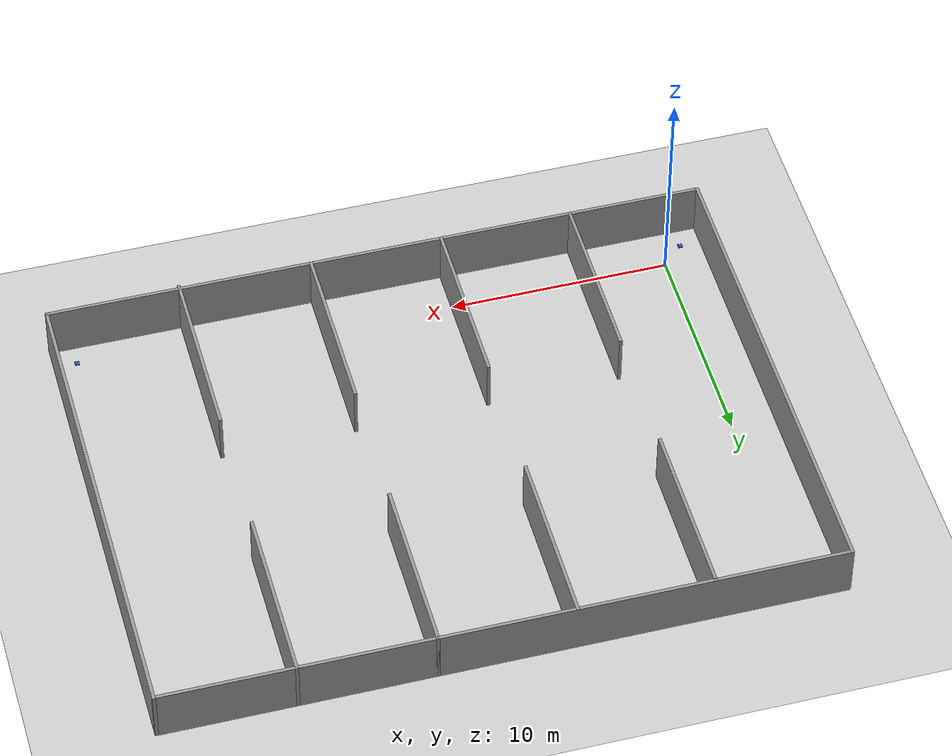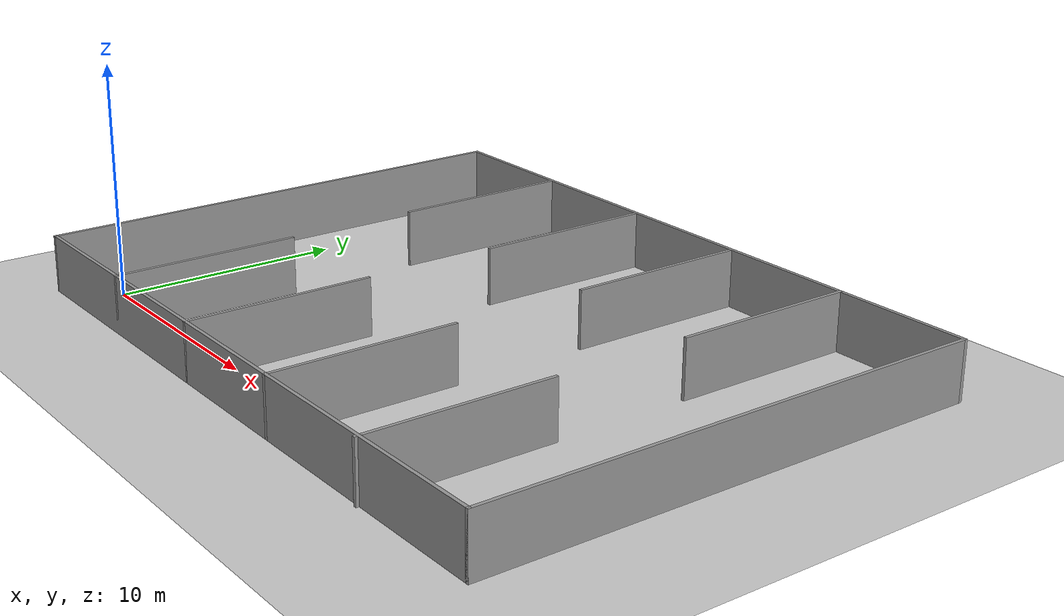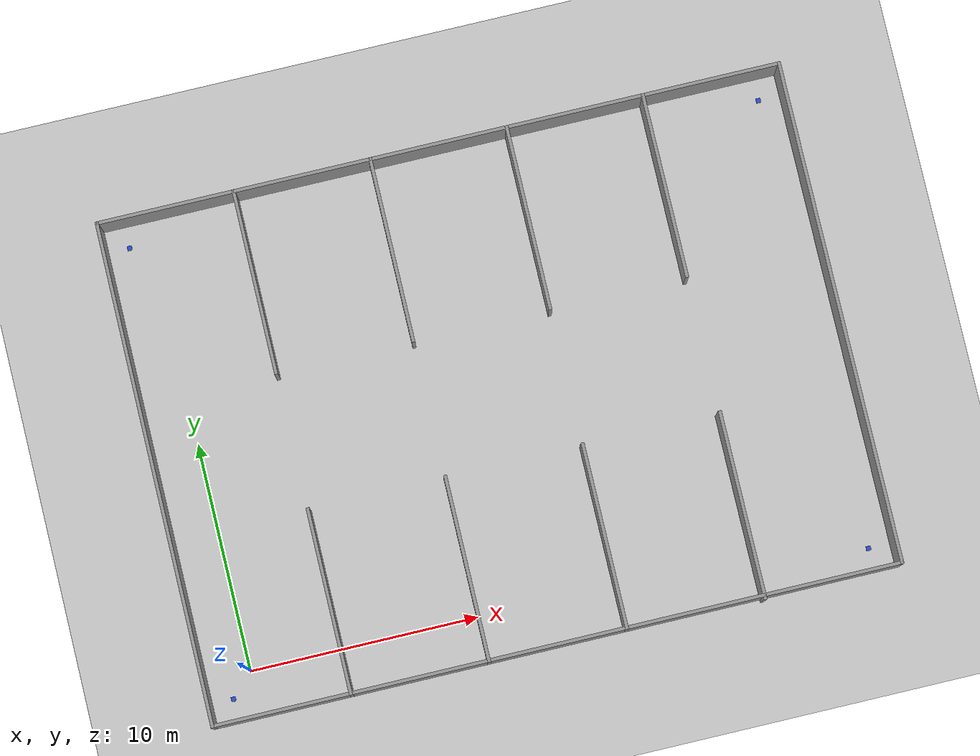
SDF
<sdf version="1.6">
 <world name="default">
  <light name="sun" type="directional">
   <pose>0 0 10 0 -0 0</pose>
   <diffuse>0.8 0.8 0.8 1</diffuse>
   <specular>0.2 0.2 0.2 1</specular>
   <attenuation>
    <range>1000</range>
    <constant>0.9</constant>
    <linear>0.01</linear>
    <quadratic>0.001</quadratic>
   </attenuation>
   <direction>-0.5 0.1 -0.9</direction>
  </light>
  <model name="ground_plane">
   <static>1</static>
   <link name="link">
    <collision name="collision">
     <geometry><plane><normal>0 0 1</normal><size>100 100</size></plane></geometry>
     <surface>
      <contact><collide_bitmask>65535</collide_bitmask></contact>
      <friction><ode><mu>100</mu><mu2>50</mu2></ode></friction>
     </surface>
    </collision>
    <visual name="visual">
     <cast_shadows>0</cast_shadows>
     <geometry><plane><normal>0 0 1</normal><size>100 100</size></plane></geometry>
     <material>
      <script><uri>file://media/materials/scripts/gazebo.material</uri><name>Gazebo/Grey</name></script>
     </material>
    </visual>
   </link>
  </model>
  <gravity>0 0 -9.8</gravity>
  <magnetic_field>6e-06 2.3e-05 -4.2e-05</magnetic_field>
  <atmosphere type="adiabatic"/>
  <scene><ambient>0.4 0.4 0.4 1</ambient><background>0.7 0.7 0.7 1</background><shadows>1</shadows></scene>
  <spherical_coordinates>
   <surface_model>EARTH_WGS84</surface_model>
   <latitude_deg>0</latitude_deg>
   <longitude_deg>0</longitude_deg>
   <elevation>0</elevation>
   <heading_deg>0</heading_deg>
  </spherical_coordinates>
  <physics name="default_physics" default="0" type="ode">
   <ode>
    <solver>
     <type>quick</type>
     <iters>20</iters>
     <sor>1.3</sor>
     <use_dynamic_moi_rescaling>0</use_dynamic_moi_rescaling>
    </solver>
    <constraints>
     <cfm>0</cfm>
     <erp>0.2</erp>
     <contact_max_correcting_vel>100</contact_max_correcting_vel>
     <contact_surface_layer>0.001</contact_surface_layer>
    </constraints>
   </ode>
   <max_step_size>0.002</max_step_size>
   <real_time_factor>1</real_time_factor>
   <real_time_update_rate>500</real_time_update_rate>
  </physics>
  <audio><device>default</device></audio>
  <model name="router">
   <pose>-1 19 0 0 -0 0</pose>
   <link name="router">
    <collision name="router_Collision">
     <geometry><box><size>0.2 0.2 0.05</size></box></geometry>
     <pose>0 0 0.025 0 -0 0</pose>
    </collision>
    <visual name="router_Visual">
     <pose>0 0 0.025 0 -0 0</pose>
     <geometry><box><size>0.2 0.2 0.05</size></box></geometry>
     <material>
      <script><uri>file://media/materials/scripts/gazebo.material</uri><name>Gazebo/Blue</name></script>
      <ambient>1 1 1 1</ambient>
     </material>
     <meta><layer>0</layer></meta>
    </visual>
   </link>
   <plugin name="router" filename="librouter.so">
    <topicName>router</topicName>
    <updateRate>10.0</updateRate>
    <range>18</range>
   </plugin>
   <static>1</static>
  </model>
  <model name="router_0">
   <pose>-1 -1 0 0 -0 0</pose>
   <link name="router">
    <collision name="router_Collision">
     <geometry><box><size>0.2 0.2 0.05</size></box></geometry>
     <pose>0 0 0.025 0 -0 0</pose>
    </collision>
    <visual name="router_Visual">
     <pose>0 0 0.025 0 -0 0</pose>
     <geometry><box><size>0.2 0.2 0.05</size></box></geometry>
     <material>
      <script><uri>file://media/materials/scripts/gazebo.material</uri><name>Gazebo/Blue</name></script>
      <ambient>1 1 1 1</ambient>
     </material>
     <meta><layer>0</layer></meta>
    </visual>
   </link>
   <plugin name="router" filename="librouter.so">
    <topicName>router</topicName>
    <updateRate>10.0</updateRate>
    <range>18</range>
   </plugin>
   <static>1</static>
  </model>
  <model name="router_1">
   <pose>27 -1 0 0 -0 0</pose>
   <link name="router">
    <collision name="router_Collision">
     <geometry><box><size>0.2 0.2 0.05</size></box></geometry>
     <pose>0 0 0.025 0 -0 0</pose>
    </collision>
    <visual name="router_Visual">
     <pose>0 0 0.025 0 -0 0</pose>
     <geometry><box><size>0.2 0.2 0.05</size></box></geometry>
     <material>
      <script><uri>file://media/materials/scripts/gazebo.material</uri><name>Gazebo/Blue</name></script>
      <ambient>1 1 1 1</ambient>
     </material>
     <meta><layer>0</layer></meta>
    </visual>
   </link>
   <plugin name="router" filename="librouter.so">
    <topicName>router</topicName>
    <updateRate>10.0</updateRate>
    <range>18</range>
   </plugin>
   <static>1</static>
  </model>
  <model name="router_2">
   <pose>27 19 0 0 -0 0</pose>
   <link name="router">
    <collision name="router_Collision">
     <geometry><box><size>0.2 0.2 0.05</size></box></geometry>
     <pose>0 0 0.025 0 -0 0</pose>
    </collision>
    <visual name="router_Visual">
     <pose>0 0 0.025 0 -0 0</pose>
     <geometry><box><size>0.2 0.2 0.05</size></box></geometry>
     <material>
      <script><uri>file://media/materials/scripts/gazebo.material</uri><name>Gazebo/Blue</name></script>
      <ambient>1 1 1 1</ambient>
     </material>
     <meta><layer>0</layer></meta>
    </visual>
   </link>
   <plugin name="router" filename="librouter.so">
    <topicName>router</topicName>
    <updateRate>10.0</updateRate>
    <range>18</range>
   </plugin>
   <static>1</static>
  </model>
  <model name="rooms">
   <pose>13 8.9385 0 0 -0 0</pose>
   <link name="Wall_0">
    <collision name="Wall_0_Collision">
     <geometry><box><size>30.15 0.15 2.5</size></box></geometry>
     <pose>0 0 1.25 0 -0 0</pose>
    </collision>
    <visual name="Wall_0_Visual">
     <pose>0 0 1.25 0 -0 0</pose>
     <geometry><box><size>30.15 0.15 2.5</size></box></geometry>
     <material>
      <script><uri>file://media/materials/scripts/gazebo.material</uri><name>Gazebo/Grey</name></script>
      <ambient>1 1 1 1</ambient>
     </material>
     <meta><layer>0</layer></meta>
    </visual>
    <pose>0 -10.9385 0 0 -0 0</pose>
   </link>
   <link name="Wall_1">
    <collision name="Wall_1_Collision">
     <geometry><box><size>22.15 0.15 2.5</size></box></geometry>
     <pose>0 0 1.25 0 -0 0</pose>
    </collision>
    <visual name="Wall_1_Visual">
     <pose>0 0 1.25 0 -0 0</pose>
     <geometry><box><size>22.15 0.15 2.5</size></box></geometry>
     <material>
      <script><uri>file://media/materials/scripts/gazebo.material</uri><name>Gazebo/Grey</name></script>
      <ambient>1 1 1 1</ambient>
     </material>
     <meta><layer>0</layer></meta>
    </visual>
    <pose>15 0.0615 0 0 -0 1.5708</pose>
   </link>
   <link name="Wall_10">
    <collision name="Wall_10_Collision">
     <geometry><box><size>8.15 0.15 2.5</size></box></geometry>
     <pose>0 0 1.25 0 -0 0</pose>
    </collision>
    <visual name="Wall_10_Visual">
     <pose>0 0 1.25 0 -0 0</pose>
     <geometry><box><size>8.15 0.15 2.5</size></box></geometry>
     <material>
      <script><uri>file://media/materials/scripts/gazebo.material</uri><name>Gazebo/Grey</name></script>
      <ambient>1 1 1 1</ambient>
     </material>
     <meta><layer>0</layer></meta>
    </visual>
    <pose>-9 -6.9385 0 0 -0 1.5708</pose>
   </link>
   <link name="Wall_12">
    <collision name="Wall_12_Collision">
     <geometry><box><size>8.15 0.15 2.5</size></box></geometry>
     <pose>0 0 1.25 0 -0 0</pose>
    </collision>
    <visual name="Wall_12_Visual">
     <pose>0 0 1.25 0 -0 0</pose>
     <geometry><box><size>8.15 0.15 2.5</size></box></geometry>
     <material>
      <script><uri>file://media/materials/scripts/gazebo.material</uri><name>Gazebo/Grey</name></script>
      <ambient>1 1 1 1</ambient>
     </material>
     <meta><layer>0</layer></meta>
    </visual>
    <pose>-3 -6.9385 0 0 -0 1.5708</pose>
   </link>
   <link name="Wall_14">
    <collision name="Wall_14_Collision">
     <geometry><box><size>8.25 0.15 2.5</size></box></geometry>
     <pose>0 0 1.25 0 -0 0</pose>
    </collision>
    <visual name="Wall_14_Visual">
     <pose>0 0 1.25 0 -0 0</pose>
     <geometry><box><size>8.25 0.15 2.5</size></box></geometry>
     <material>
      <script><uri>file://media/materials/scripts/gazebo.material</uri><name>Gazebo/Grey</name></script>
      <ambient>1 1 1 1</ambient>
     </material>
     <meta><layer>0</layer></meta>
    </visual>
    <pose>9 -7.0115 0 0 -0 1.5708</pose>
   </link>
   <link name="Wall_16">
    <collision name="Wall_16_Collision">
     <geometry><box><size>8.15 0.15 2.5</size></box></geometry>
     <pose>0 0 1.25 0 -0 0</pose>
    </collision>
    <visual name="Wall_16_Visual">
     <pose>0 0 1.25 0 -0 0</pose>
     <geometry><box><size>8.15 0.15 2.5</size></box></geometry>
     <material>
      <script><uri>file://media/materials/scripts/gazebo.material</uri><name>Gazebo/Grey</name></script>
      <ambient>1 1 1 1</ambient>
     </material>
     <meta><layer>0</layer></meta>
    </visual>
    <pose>3 -6.9385 0 0 -0 1.5708</pose>
   </link>
   <link name="Wall_2">
    <collision name="Wall_2_Collision">
     <geometry><box><size>30.15 0.15 2.5</size></box></geometry>
     <pose>0 0 1.25 0 -0 0</pose>
    </collision>
    <visual name="Wall_2_Visual">
     <pose>0 0 1.25 0 -0 0</pose>
     <geometry><box><size>30.15 0.15 2.5</size></box></geometry>
     <material>
      <script><uri>file://media/materials/scripts/gazebo.material</uri><name>Gazebo/Grey</name></script>
      <ambient>1 1 1 1</ambient>
     </material>
     <meta><layer>0</layer></meta>
    </visual>
    <pose>0 11.0615 0 0 -0 3.14159</pose>
   </link>
   <link name="Wall_21">
    <collision name="Wall_21_Collision">
     <geometry><box><size>8.15 0.15 2.5</size></box></geometry>
     <pose>0 0 1.25 0 -0 0</pose>
    </collision>
    <visual name="Wall_21_Visual">
     <pose>0 0 1.25 0 -0 0</pose>
     <geometry><box><size>8.15 0.15 2.5</size></box></geometry>
     <material>
      <script><uri>file://media/materials/scripts/gazebo.material</uri><name>Gazebo/Grey</name></script>
      <ambient>1 1 1 1</ambient>
     </material>
     <meta><layer>0</layer></meta>
    </visual>
    <pose>9 7.0615 0 0 -0 -1.5708</pose>
   </link>
   <link name="Wall_23">
    <collision name="Wall_23_Collision">
     <geometry><box><size>8.15 0.15 2.5</size></box></geometry>
     <pose>0 0 1.25 0 -0 0</pose>
    </collision>
    <visual name="Wall_23_Visual">
     <pose>0 0 1.25 0 -0 0</pose>
     <geometry><box><size>8.15 0.15 2.5</size></box></geometry>
     <material>
      <script><uri>file://media/materials/scripts/gazebo.material</uri><name>Gazebo/Grey</name></script>
      <ambient>1 1 1 1</ambient>
     </material>
     <meta><layer>0</layer></meta>
    </visual>
    <pose>3 7.0615 0 0 -0 -1.5708</pose>
   </link>
   <link name="Wall_25">
    <collision name="Wall_25_Collision">
     <geometry><box><size>8.15 0.15 2.5</size></box></geometry>
     <pose>0 0 1.25 0 -0 0</pose>
    </collision>
    <visual name="Wall_25_Visual">
     <pose>0 0 1.25 0 -0 0</pose>
     <geometry><box><size>8.15 0.15 2.5</size></box></geometry>
     <material>
      <script><uri>file://media/materials/scripts/gazebo.material</uri><name>Gazebo/Grey</name></script>
      <ambient>1 1 1 1</ambient>
     </material>
     <meta><layer>0</layer></meta>
    </visual>
    <pose>-3 7.0615 0 0 -0 -1.5708</pose>
   </link>
   <link name="Wall_27">
    <collision name="Wall_27_Collision">
     <geometry><box><size>8.15 0.15 2.5</size></box></geometry>
     <pose>0 0 1.25 0 -0 0</pose>
    </collision>
    <visual name="Wall_27_Visual">
     <pose>0 0 1.25 0 -0 0</pose>
     <geometry><box><size>8.15 0.15 2.5</size></box></geometry>
     <material>
      <script><uri>file://media/materials/scripts/gazebo.material</uri><name>Gazebo/Grey</name></script>
      <ambient>1 1 1 1</ambient>
     </material>
     <meta><layer>0</layer></meta>
    </visual>
    <pose>-9 7.0615 0 0 -0 -1.5708</pose>
   </link>
   <link name="Wall_3">
    <collision name="Wall_3_Collision">
     <geometry><box><size>22.15 0.15 2.5</size></box></geometry>
     <pose>0 0 1.25 0 -0 0</pose>
    </collision>
    <visual name="Wall_3_Visual">
     <pose>0 0 1.25 0 -0 0</pose>
     <geometry><box><size>22.15 0.15 2.5</size></box></geometry>
     <material>
      <script><uri>file://media/materials/scripts/gazebo.material</uri><name>Gazebo/Grey</name></script>
      <ambient>1 1 1 1</ambient>
     </material>
     <meta><layer>0</layer></meta>
    </visual>
    <pose>-15 0.0615 0 0 -0 -1.5708</pose>
   </link>
   <static>1</static>
  </model>
 </world>
</sdf>
